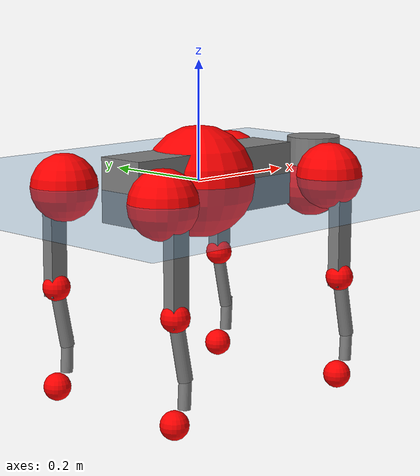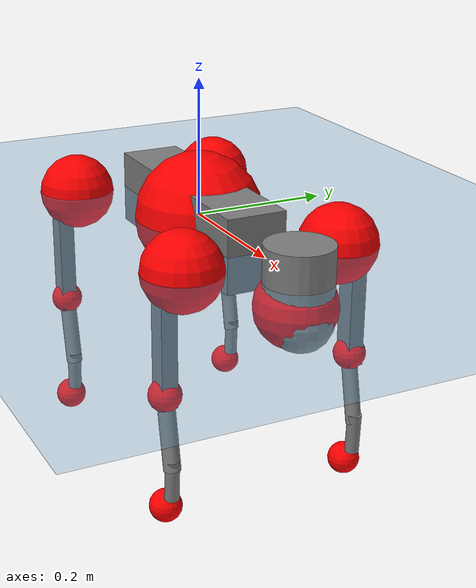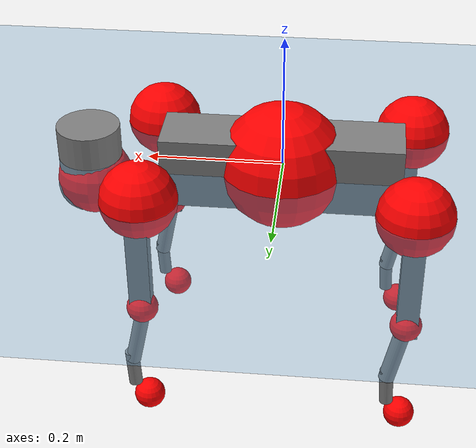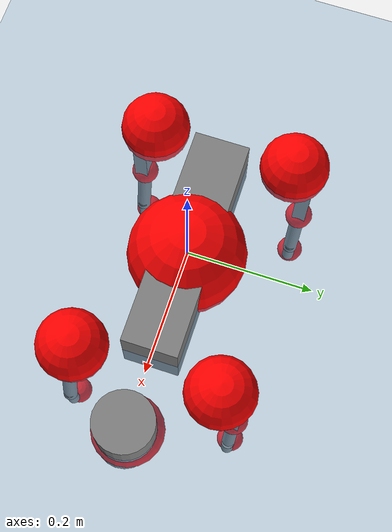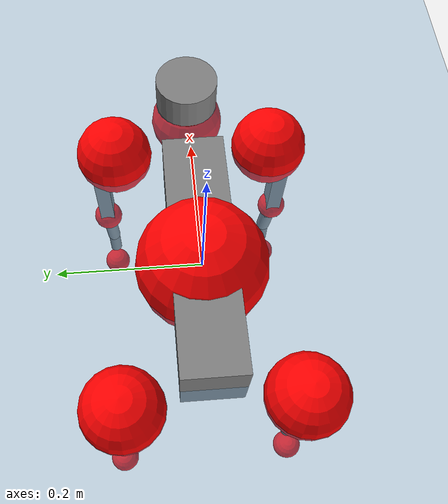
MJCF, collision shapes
<mujoco model="go2">
  <compiler angle="radian" assetdir="assets" balanceinertia="true" inertiafromgeom="false"/>

  <option timestep="0.005" density="1.2" viscosity="2e-05"/>

  <size nkey="1"/>

  <visual>
    <quality shadowsize="8192"/>
    <map shadowclip="0.5"/>
  </visual>

  <default>
    <default class="/">
      <geom contype="0" conaffinity="0" group="1" solref="-1000 -80"/>
      <site size="0.01 0.005 0.005" group="5"/>
      <general forcelimited="true" biastype="affine" gainprm="20" biasprm="0 -20 -0.5"/>
      <default class="go2">
        <joint armature="0.01" damping="0.01" frictionloss="0.2"/>
        <geom condim="1" margin="0.001"/>
        <default class="visual">
          <geom type="mesh" group="2"/>
        </default>
        <default class="collision">
          <geom group="3"/>
          <default class="foot">
            <geom size="0.022 0 0" condim="6" priority="1" friction="0.8 0.02 0.01" solimp="0.015 1 0.022"/>
          </default>
        </default>
        <default class="reward_collision_sphere">
          <geom group="5" rgba="1 0 0 1"/>
        </default>
      </default>
    </default>
  </default>

  <asset>
    <texture type="skybox" colorspace="auto" name="//unnamed_texture_0" builtin="gradient" rgb1="0.95 0.95 0.95" rgb2="0.95 0.95 0.95" width="100" height="600"/>
    <texture type="2d" colorspace="auto" name="texplane" builtin="checker" rgb1="0.345 0.575 0.748" rgb2="0.345 0.575 0.748" markrgb="1 1 1" width="512" height="512"/>
    <material name="MatPlane" class="/" texture="texplane" texuniform="true" texrepeat="2 2" specular="0.9"/>
    <material name="metal" class="/" rgba="0.9 0.95 0.95 1"/>
    <material name="black" class="/" rgba="0 0 0 1"/>
    <material name="white" class="/"/>
    <material name="gray" class="/" rgba="0.671705 0.692426 0.77427 1"/>
    <mesh name="base_0" class="/" file="base_0.obj"/>
    <mesh name="base_1" class="/" file="base_1.obj"/>
    <mesh name="base_2" class="/" file="base_2.obj"/>
    <mesh name="base_3" class="/" file="base_3.obj"/>
    <mesh name="base_4" class="/" file="base_4.obj"/>
    <mesh name="hip_0" class="/" file="hip_0.obj"/>
    <mesh name="hip_1" class="/" file="hip_1.obj"/>
    <mesh name="thigh_0" class="/" file="thigh_0.obj"/>
    <mesh name="thigh_1" class="/" file="thigh_1.obj"/>
    <mesh name="thigh_mirror_0" class="/" file="thigh_mirror_0.obj"/>
    <mesh name="thigh_mirror_1" class="/" file="thigh_mirror_1.obj"/>
    <mesh name="calf_0" class="/" file="calf_0.obj"/>
    <mesh name="calf_1" class="/" file="calf_1.obj"/>
    <mesh name="calf_mirror_0" class="/" file="calf_mirror_0.obj"/>
    <mesh name="calf_mirror_1" class="/" file="calf_mirror_1.obj"/>
    <mesh name="foot" class="/" file="foot.obj"/>
  </asset>

  <worldbody>
    <geom name="floor" class="/" size="100 100 0.125" type="plane" group="0" material="MatPlane"/>
    <light name="toplight_shadow" class="/" pos="0 0 5" dir="0.0990148 0.0990148 -0.990148" type="directional" ambient="0.04 0.04 0.04" diffuse="0.55 0.55 0.55" specular="0.12 0.12 0.12"/>
    <light name="toplight_fill" class="/" pos="0 0 5" dir="0.0990148 0.0990148 -0.990148" type="directional" castshadow="false" ambient="0.04 0.04 0.04" diffuse="0.3 0.3 0.3" specular="0.08 0.08 0.08"/>
    <body name="trunk" childclass="go2" pos="0.00053742 4.96643e-05 -0.000966024" quat="1 0.000457563 -9.7449e-05 -0.00011572">
      <inertial pos="0.0188418 -0.0013544 -0.00336891" quat="-0.00158644 0.713421 -0.0010996 0.700733" mass="5.88588" diaginertia="0.112176 0.100472 0.00832554"/>
      <joint name="//unnamed_joint_0" type="free" armature="0" damping="0" frictionloss="0"/>
      <geom name="//unnamed_geom_1" class="visual" material="black" mesh="base_0"/>
      <geom name="//unnamed_geom_2" class="visual" material="black" mesh="base_1"/>
      <geom name="//unnamed_geom_3" class="visual" material="black" mesh="base_2"/>
      <geom name="//unnamed_geom_4" class="visual" material="white" mesh="base_3"/>
      <geom name="//unnamed_geom_5" class="visual" material="gray" mesh="base_4"/>
      <geom name="trunk_1" class="collision" size="0.176636 0.0439008 0.0535261" type="box"/>
      <geom name="trunk_2" class="collision" size="0.0469527 0.0422574" pos="0.287349 0 0.00805545" type="cylinder"/>
      <geom name="trunk_3" class="collision" size="0.0441355" pos="0.295415 0 -0.0483327"/>
      <geom name="//unnamed_geom_9" class="reward_collision_sphere" size="0.0939054"/>
      <geom name="//unnamed_geom_10" class="reward_collision_sphere" size="0.0563432" pos="0.282308 0 -0.0362495"/>
      <site name="imu" pos="-0.0170646 -0.000104865 0.0254711" size="0.00939054"/>
      <camera name="track" pos="0 -2.00675 0" quat="0.707107 0.707107 0 0" mode="trackcom"/>
      <camera name="ego_camera" pos="0.314572 0 0.0362495" quat="-0.5 -0.5 0.5 0.5"/>
      <body name="FL_hip" pos="0.193688 0.0460695 0.0016492" quat="1 -5.574e-05 0.000138607 7.32923e-05">
        <inertial pos="-0.00531503 0.0018452 -0.000358029" quat="0.497176 0.499433 0.505598 0.497748" mass="0.540288" diaginertia="0.000892236 0.000582421 0.000157966"/>
        <joint name="FL_hip_joint" pos="0 0 0" axis="1 0.000542541 -0.000591493" range="-1.04654 1.02938" armature="0.00933012" damping="0.00232943" frictionloss="0.188178"/>
        <geom name="//unnamed_geom_11" class="visual" material="metal" mesh="hip_0"/>
        <geom name="//unnamed_geom_12" class="visual" material="gray" mesh="hip_1"/>
        <geom name="//unnamed_geom_13" class="collision" size="0.0431965 0.0187811" pos="0 0.08027 0" quat="0.707107 0.707107 0 0" type="cylinder"/>
        <geom name="//unnamed_geom_14" class="reward_collision_sphere" size="0.0563432" pos="0 0.0702363 0"/>
        <body name="FL_thigh" pos="-0.000259205 0.0972545 0.00148076" quat="1 0.00045513 -0.000565337 0.000235543">
          <inertial pos="-0.00400529 -0.0223558 -0.0268527" quat="0.829986 0.0814503 -0.0202371 0.551433" mass="0.946004" diaginertia="0.00617074 0.00574885 0.0002933"/>
          <joint name="FL_thigh_joint" pos="0 0 0" axis="0.00593275 0.99995 -0.00808369" stiffness="0.0021867" range="-1.54008 3.49153" armature="0.00962324" damping="0.00907404" frictionloss="0.19295"/>
          <geom name="//unnamed_geom_15" class="visual" material="metal" mesh="thigh_0"/>
          <geom name="//unnamed_geom_16" class="visual" material="gray" mesh="thigh_1"/>
          <geom name="//unnamed_geom_17" class="collision" size="0.100009 0.0115034 0.0159639" pos="0 0 -0.0857905" quat="0.707107 0 0.707107 0" type="box"/>
          <body name="FL_calf" pos="-0.000926562 0.000309887 -0.171783" quat="1 1.83267e-05 2.36555e-06 1.20619e-05">
            <inertial pos="0.00654734 -0.000743731 -0.112581" quat="0.710328 0.00121645 -0.00600754 0.703844" mass="0.199768" diaginertia="0.00152906 0.00149498 1.79581e-05"/>
            <joint name="FL_calf_joint" pos="0 0 0" axis="-0.00378941 0.999986 -0.00374956" range="-2.72725 -0.84065" armature="0.00897461" damping="0.00089524" frictionloss="0.185522"/>
            <geom name="//unnamed_geom_18" class="visual" material="gray" mesh="calf_0"/>
            <geom name="//unnamed_geom_19" class="visual" material="black" mesh="calf_1"/>
            <geom name="FL_calf0" class="collision" size="0.0112686 0.0563432" pos="0.00806594 0 -0.0483327" quat="0.994493 0 -0.104807 0" type="cylinder"/>
            <geom name="//unnamed_geom_21" class="collision" size="0.0103296 0.0305193" pos="0.0201648 0 -0.119221" quat="0.999688 0 0.0249974 0" type="cylinder"/>
            <geom name="//unnamed_geom_22" class="visual" pos="0 0 -0.171581" quat="1 0 0 0" material="black" mesh="foot"/>
            <geom name="FL_foot" class="foot" size="0.0178644" pos="-0.00201648 0 -0.171581"/>
            <geom name="//unnamed_geom_24" class="reward_collision_sphere" size="0.0234764"/>
            <geom name="//unnamed_geom_25" class="reward_collision_sphere" size="0.0234764" pos="-0.00201648 0 -0.171581"/>
            <site name="FL_foot" class="foot" pos="-0.00201648 0 -0.171581" size="0.00939054"/>
          </body>
        </body>
      </body>
      <body name="FR_hip" pos="0.193865 -0.0476308 0.000960412" quat="1 1.97977e-06 3.53626e-05 -3.91738e-05">
        <inertial pos="-0.00492952 -0.00409985 -0.000300611" quat="0.490206 0.512028 0.49991 0.497609" mass="0.560452" diaginertia="0.000914935 0.000620919 0.000162292"/>
        <joint name="FR_hip_joint" pos="0 0 0" axis="0.999969 0.000378553 0.00789095" range="-1.04672 1.04916" armature="0.00954133" damping="0.00567996" frictionloss="0.178473"/>
        <geom name="//unnamed_geom_26" class="visual" pos="0 1.72342e-09 7.39209e-08" quat="4.63268e-05 1 0 0" material="metal" mesh="hip_0"/>
        <geom name="//unnamed_geom_27" class="visual" pos="0 2.79387e-09 -1.82835e-07" quat="4.63268e-05 1 0 0" material="gray" mesh="hip_1"/>
        <geom name="//unnamed_geom_28" class="collision" size="0.0431965 0.0187811" pos="0 -0.08027 0" quat="0.707107 0.707107 0 0" type="cylinder"/>
        <geom name="//unnamed_geom_29" class="reward_collision_sphere" size="0.0563432" pos="0 -0.0702363 0"/>
        <body name="FR_thigh" pos="-0.000193082 -0.095997 -0.00110011" quat="1 0.000139787 0.000192187 0.000597466">
          <inertial pos="-0.00181448 0.023313 -0.0257199" quat="0.549894 -0.0192905 0.0853162 0.830642" mass="0.961941" diaginertia="0.00621305 0.00585972 0.000304457"/>
          <joint name="FR_thigh_joint" pos="0 0 0" axis="-0.00018784 -0.999996 0.00297045" range="-3.51043 1.57401" armature="0.00945325" damping="0.010618" frictionloss="0.178513"/>
          <geom name="//unnamed_geom_30" class="visual" material="metal" mesh="thigh_mirror_0"/>
          <geom name="//unnamed_geom_31" class="visual" material="gray" mesh="thigh_mirror_1"/>
          <geom name="//unnamed_geom_32" class="collision" size="0.100009 0.0115034 0.0159639" pos="0 0 -0.0857905" quat="0.707107 0 0.707107 0" type="box"/>
          <body name="FR_calf" pos="0.0004786 -0.000633646 -0.170619" quat="1 -0.000159849 4.96832e-05 -0.00014959">
            <inertial pos="0.00577693 0.000696337 -0.114278" quat="0.699053 -0.00561965 -0.00642901 0.715019" mass="0.20043" diaginertia="0.00154654 0.00151937 1.82323e-05"/>
            <joint name="FR_calf_joint" pos="0 0 0" axis="0.00145099 -0.999998 0.00168208" range="0.800164 2.73202" armature="0.00981557" damping="0.0170848" frictionloss="0.17887"/>
            <geom name="//unnamed_geom_33" class="visual" material="gray" mesh="calf_mirror_0"/>
            <geom name="//unnamed_geom_34" class="visual" material="black" mesh="calf_mirror_1"/>
            <geom name="FR_calf0" class="collision" size="0.0122077 0.0563432" pos="0.0100824 0 -0.0483327" quat="0.995004 0 -0.0998334 0" type="cylinder"/>
            <geom name="//unnamed_geom_36" class="collision" size="0.0103296 0.0305193" pos="0.0201648 0 -0.119221" quat="0.999688 0 0.0249974 0" type="cylinder"/>
            <geom name="//unnamed_geom_37" class="visual" pos="0 0 -0.171581" quat="1 0 0 0" material="black" mesh="foot"/>
            <geom name="FR_foot" class="foot" size="0.0217582" pos="-0.00201648 0 -0.171581"/>
            <geom name="//unnamed_geom_39" class="reward_collision_sphere" size="0.0234764"/>
            <geom name="//unnamed_geom_40" class="reward_collision_sphere" size="0.0234764" pos="-0.00201648 0 -0.171581"/>
            <site name="FR_foot" class="foot" pos="-0.00201648 0 -0.171581" size="0.00939054"/>
          </body>
        </body>
      </body>
      <body name="RL_hip" pos="-0.193572 0.0471719 -0.00234331" quat="1 0.000185697 0.000168501 -0.000186702">
        <inertial pos="0.00561943 0.00229114 -0.00200516" quat="0.50369 0.496458 0.500107 0.499719" mass="0.575055" diaginertia="0.000969765 0.000622061 0.000168034"/>
        <joint name="RL_hip_joint" pos="0 0 0" axis="-0.999808 -0.000968791 0.0195635" stiffness="0.00410738" range="-1.04323 1.029" armature="0.00918778" damping="0" frictionloss="0.188067"/>
        <geom name="//unnamed_geom_41" class="visual" pos="-1.76582e-09 0 -3.46141e-07" quat="4.63268e-05 0 1 0" material="metal" mesh="hip_0"/>
        <geom name="//unnamed_geom_42" class="visual" pos="-2.8626e-09 0 -3.06978e-07" quat="4.63268e-05 0 1 0" material="gray" mesh="hip_1"/>
        <geom name="//unnamed_geom_43" class="collision" size="0.0431965 0.0187811" pos="0 0.08027 0" quat="0.707107 0.707107 0 0" type="cylinder"/>
        <geom name="//unnamed_geom_44" class="reward_collision_sphere" size="0.0563432" pos="0 0.0702363 0"/>
        <body name="RL_thigh" pos="-0.000244875 0.096954 -0.000785569" quat="1 -0.000230725 -0.000467898 0.000171998">
          <inertial pos="-0.00590903 -0.0232196 -0.0283762" quat="0.829582 0.0841666 -0.0199637 0.551644" mass="0.963685" diaginertia="0.00601836 0.00593918 0.000293637"/>
          <joint name="RL_thigh_joint" pos="0 0 0" axis="0.000587214 0.999985 -0.0055016" stiffness="0.0113764" range="-0.506596 4.53822" armature="0.00936011" damping="0.00265635" frictionloss="0.189384"/>
          <geom name="//unnamed_geom_45" class="visual" material="metal" mesh="thigh_0"/>
          <geom name="//unnamed_geom_46" class="visual" material="gray" mesh="thigh_1"/>
          <geom name="//unnamed_geom_47" class="collision" size="0.100009 0.0115034 0.0159639" pos="0 0 -0.0857905" quat="0.707107 0 0.707107 0" type="box"/>
          <body name="RL_calf" pos="0.00117147 -0.000919499 -0.170715" quat="1 -3.27528e-05 1.33969e-05 3.16306e-05">
            <inertial pos="0.00554728 0.00100821 -0.112836" quat="0.710485 0.00257453 -0.00523198 0.703688" mass="0.205905" diaginertia="0.00159647 0.00155531 1.83473e-05"/>
            <joint name="RL_calf_joint" pos="0 0 0" axis="-0.00349744 0.999924 0.0118587" range="-2.69668 -0.841606" armature="0.0101941" damping="0.00880054" frictionloss="0.178564"/>
            <geom name="//unnamed_geom_48" class="visual" material="gray" mesh="calf_0"/>
            <geom name="//unnamed_geom_49" class="visual" material="black" mesh="calf_1"/>
            <geom name="RL_calf0" class="collision" size="0.0122077 0.0563432" pos="0.0100824 0 -0.0483327" quat="0.995004 0 -0.0998334 0" type="cylinder"/>
            <geom name="//unnamed_geom_51" class="collision" size="0.0103296 0.0305193" pos="0.0201648 0 -0.119221" quat="0.999688 0 0.0249974 0" type="cylinder"/>
            <geom name="//unnamed_geom_52" class="visual" pos="0 0 -0.171581" quat="1 0 0 0" material="black" mesh="foot"/>
            <geom name="RL_foot" class="foot" size="0.0179967" pos="-0.00201648 0 -0.171581"/>
            <geom name="//unnamed_geom_54" class="reward_collision_sphere" size="0.0234764"/>
            <geom name="//unnamed_geom_55" class="reward_collision_sphere" size="0.0234764" pos="-0.00201648 0 -0.171581"/>
            <site name="RL_foot" class="foot" pos="-0.00201648 0 -0.171581" size="0.00939054"/>
          </body>
        </body>
      </body>
      <body name="RR_hip" pos="-0.192784 -0.0467304 -0.00269977" quat="1 8.53834e-06 3.79135e-05 1.59854e-05">
        <inertial pos="0.0057506 -0.00260456 -0.001975" quat="0.494783 0.50395 0.491329 0.509726" mass="0.552955" diaginertia="0.000895215 0.000587706 0.000158664"/>
        <joint name="RR_hip_joint" pos="0 0 0" axis="-0.999959 0.00904837 0.000157165" range="-1.07487 1.03052" armature="0.00983757" damping="0.0078967" frictionloss="0.18851"/>
        <geom name="//unnamed_geom_56" class="visual" pos="1.76565e-09 1.72342e-09 -4.20062e-07" quat="2.14617e-09 4.63268e-05 4.63268e-05 -1" material="metal" mesh="hip_0"/>
        <geom name="//unnamed_geom_57" class="visual" pos="2.86302e-09 2.79387e-09 -1.24143e-07" quat="2.14617e-09 4.63268e-05 4.63268e-05 -1" material="gray" mesh="hip_1"/>
        <geom name="//unnamed_geom_58" class="collision" size="0.0431965 0.0187811" pos="0 -0.08027 0" quat="0.707107 0.707107 0 0" type="cylinder"/>
        <geom name="//unnamed_geom_59" class="reward_collision_sphere" size="0.0563432" pos="0 -0.0702363 0"/>
        <body name="RR_thigh" pos="0.0020951 -0.0965227 -0.00182992" quat="1 0.000455183 0.000232305 -0.000240678">
          <inertial pos="-0.00385146 0.0219512 -0.0268791" quat="0.551601 -0.0200552 0.0847497 0.829549" mass="0.950933" diaginertia="0.0061756 0.00592518 0.000297154"/>
          <joint name="RR_thigh_joint" pos="0 0 0" axis="0.00550391 -0.999975 -0.00437161" range="-4.54788 0.541044" armature="0.00931597" damping="0.00991045" frictionloss="0.185882"/>
          <geom name="//unnamed_geom_60" class="visual" material="metal" mesh="thigh_mirror_0"/>
          <geom name="//unnamed_geom_61" class="visual" material="gray" mesh="thigh_mirror_1"/>
          <geom name="//unnamed_geom_62" class="collision" size="0.100009 0.0115034 0.0159639" pos="0 0 -0.0857905" quat="0.707107 0 0.707107 0" type="box"/>
          <body name="RR_calf" pos="-0.000533311 0.00129445 -0.17152" quat="1 0.000430952 -7.07154e-05 0.000696046">
            <inertial pos="0.00700879 0.00159098 -0.114633" quat="0.701363 -0.00434389 0.00188662 0.712788" mass="0.20298" diaginertia="0.00157565 0.00148904 1.82211e-05"/>
            <joint name="RR_calf_joint" pos="0 0 0" axis="0.00241375 -0.999992 0.00330275" stiffness="9.3847e-05" range="0.843054 2.75806" armature="0.00939714" damping="0.0152766" frictionloss="0.17862"/>
            <geom name="//unnamed_geom_63" class="visual" material="gray" mesh="calf_mirror_0"/>
            <geom name="//unnamed_geom_64" class="visual" material="black" mesh="calf_mirror_1"/>
            <geom name="RR_calf0" class="collision" size="0.0122077 0.0563432" pos="0.0100824 0 -0.0483327" quat="0.995004 0 -0.0998334 0" type="cylinder"/>
            <geom name="//unnamed_geom_66" class="collision" size="0.0103296 0.0305193" pos="0.0201648 0 -0.119221" quat="0.999688 0 0.0249974 0" type="cylinder"/>
            <geom name="//unnamed_geom_67" class="visual" pos="0 0 -0.171581" quat="1 0 0 0" material="black" mesh="foot"/>
            <geom name="RR_foot" class="foot" size="0.0219347" pos="-0.00201648 0 -0.171581"/>
            <geom name="//unnamed_geom_69" class="reward_collision_sphere" size="0.0234764"/>
            <geom name="//unnamed_geom_70" class="reward_collision_sphere" size="0.0234764" pos="-0.00201648 0 -0.171581"/>
            <site name="RR_foot" class="foot" pos="-0.00201648 0 -0.171581" size="0.00939054"/>
          </body>
        </body>
      </body>
    </body>
  </worldbody>

  <contact>
    <pair class="/" geom1="floor" geom2="FL_foot" name="//unnamed_contact_0"/>
    <pair class="/" geom1="floor" geom2="FR_foot" name="//unnamed_contact_1"/>
    <pair class="/" geom1="floor" geom2="RL_foot" name="//unnamed_contact_2"/>
    <pair class="/" geom1="floor" geom2="RR_foot" name="//unnamed_contact_3"/>
  </contact>

  <actuator>
    <general name="FL_hip" class="/" joint="FL_hip_joint" forcerange="-21.6163 21.6163" gainprm="19.1516" biasprm="0 -19.1516 -0.476852"/>
    <general name="FL_thigh" class="/" joint="FL_thigh_joint" forcerange="-20.6968 20.6968" gainprm="19.1516" biasprm="0 -19.1516 -0.476852"/>
    <general name="FL_calf" class="/" joint="FL_calf_joint" forcerange="-44.022 44.022" gainprm="19.1516" biasprm="0 -19.1516 -0.476852"/>
    <general name="FR_hip" class="/" joint="FR_hip_joint" forcerange="-21.9495 21.9495" gainprm="19.1516" biasprm="0 -19.1516 -0.476852"/>
    <general name="FR_thigh" class="/" joint="FR_thigh_joint" forcerange="-22.3795 22.3795" gainprm="19.1516" biasprm="0 -19.1516 -0.476852"/>
    <general name="FR_calf" class="/" joint="FR_calf_joint" forcerange="-42.4856 42.4856" gainprm="19.1516" biasprm="0 -19.1516 -0.476852"/>
    <general name="RL_hip" class="/" joint="RL_hip_joint" forcerange="-22.0982 22.0982" gainprm="19.1516" biasprm="0 -19.1516 -0.476852"/>
    <general name="RL_thigh" class="/" joint="RL_thigh_joint" forcerange="-22.0177 22.0177" gainprm="19.1516" biasprm="0 -19.1516 -0.476852"/>
    <general name="RL_calf" class="/" joint="RL_calf_joint" forcerange="-41.0449 41.0449" gainprm="19.1516" biasprm="0 -19.1516 -0.476852"/>
    <general name="RR_hip" class="/" joint="RR_hip_joint" forcerange="-21.9071 21.9071" gainprm="19.1516" biasprm="0 -19.1516 -0.476852"/>
    <general name="RR_thigh" class="/" joint="RR_thigh_joint" forcerange="-23.2882 23.2882" gainprm="19.1516" biasprm="0 -19.1516 -0.476852"/>
    <general name="RR_calf" class="/" joint="RR_calf_joint" forcerange="-41.8246 41.8246" gainprm="19.1516" biasprm="0 -19.1516 -0.476852"/>
  </actuator>

  <sensor>
    <gyro site="imu" name="imu_angular_velocity"/>
    <velocimeter site="imu" name="imu_linear_velocity"/>
    <framelinvel objtype="site" objname="FL_foot" name="FL_foot_global_linear_velocity"/>
    <framelinvel objtype="site" objname="FR_foot" name="FR_foot_global_linear_velocity"/>
    <framelinvel objtype="site" objname="RL_foot" name="RL_foot_global_linear_velocity"/>
    <framelinvel objtype="site" objname="RR_foot" name="RR_foot_global_linear_velocity"/>
  </sensor>

  <keyframe>
    <key name="home" qpos="0 0 0.325 1 0 0 0 0.1 0.8 -1.5 -0.1 -0.8 1.5 -0.1 0.8 -1.5 0.1 -0.8 1.5"/>
  </keyframe>
</mujoco>
